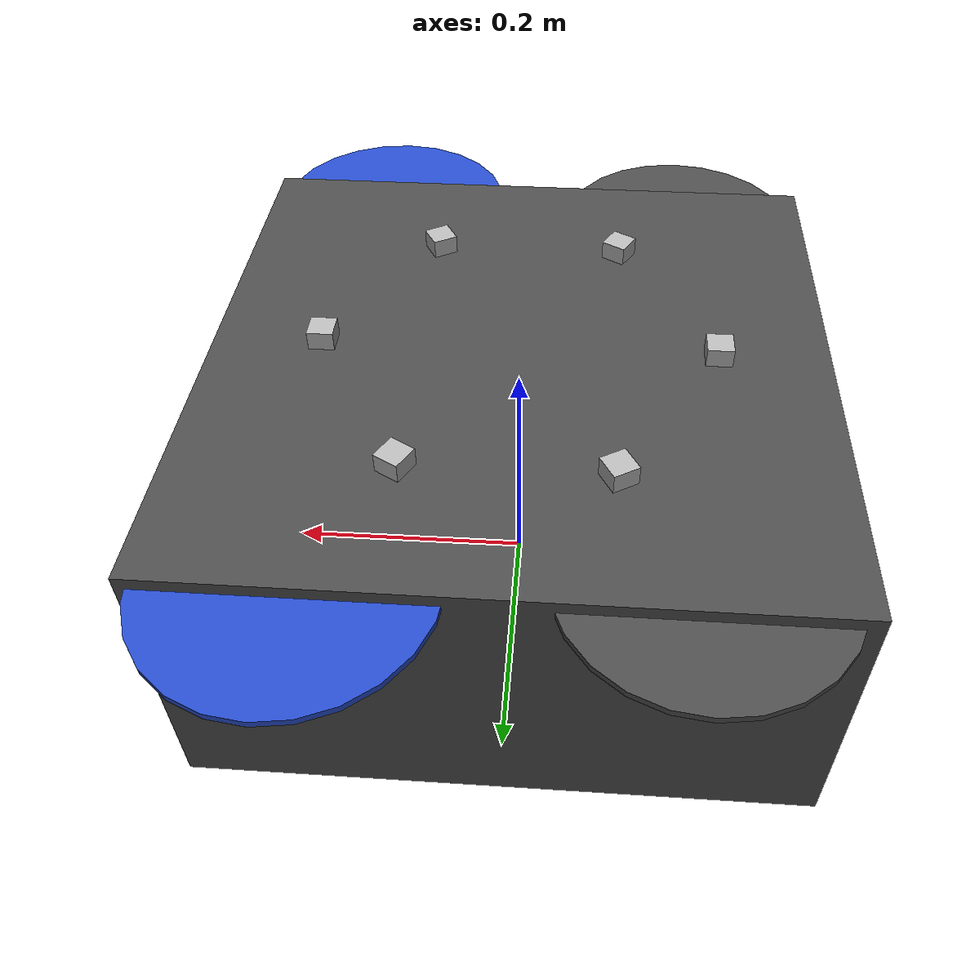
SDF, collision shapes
<?xml version="1.0"?>

<sdf version='1.5'>
  <model name='iris'>
    <pose>0 0 0.194923 0 0 0</pose>
    <link name='base_link'>
      <velocity_decay>
        <linear>0.0</linear>
        <angular>0.0</angular>
      </velocity_decay>
      <inertial>
        <pose>0 0 0 0 0 0</pose>
        <mass>1.5</mass>
        <inertia>
          <ixx>0.008</ixx>
          <ixy>0</ixy>
          <ixz>0</ixz>
          <iyy>0.015</iyy>
          <iyz>0</iyz>
          <izz>0.017</izz>
        </inertia>
      </inertial>
      <collision name='base_link_collision'>
        <pose>0 0 -0.08 0 0 0</pose>
        <geometry>
          <box>
            <size>0.47 0.47 0.23</size>
          </box>
        </geometry>
        <surface>
          <contact>
            <ode>
              <max_vel>100.0</max_vel>
              <min_depth>0.001</min_depth>
            </ode>
          </contact>
          <friction>
            <ode>
              <mu>100000.0</mu>
              <mu2>100000.0</mu2>
            </ode>
          </friction>
        </surface>
      </collision>
      <visual name='base_link_visual'>
        <geometry>
          <mesh>
            <uri>model://iris_with_standoffs/meshes/iris.dae</uri>
          </mesh>
        </geometry>
        <material>
          <script>
            <name>Gazebo/DarkGrey</name>
          </script>
        </material>
      </visual>

      <visual name='front_left_leg_visual'>
        <pose>0.123 0.22 -0.11 0 0 0</pose>
        <geometry>
          <cylinder>
            <radius>0.005</radius>
            <length>0.17</length>
          </cylinder>
        </geometry>
        <material>
          <script>
            <name>Gazebo/Green</name>
            <uri>file://media/materials/scripts/gazebo.material</uri>
          </script>
        </material>
      </visual>
      <visual name='front_right_leg_visual'>
        <pose>0.123 -0.22 -0.11 0 0 0</pose>
        <geometry>
          <cylinder>
            <radius>0.005</radius>
            <length>0.17</length>
          </cylinder>
        </geometry>
        <material>
          <script>
            <name>Gazebo/FlatBlack</name>
            <uri>file://media/materials/scripts/gazebo.material</uri>
          </script>
        </material>
      </visual>
      <visual name='rear_left_leg_visual'>
        <pose>-0.140 0.21 -0.11 0 0 0</pose>
        <geometry>
          <cylinder>
            <radius>0.005</radius>
            <length>0.17</length>
          </cylinder>
        </geometry>
        <material>
          <script>
            <name>Gazebo/FlatBlack</name>
            <uri>file://media/materials/scripts/gazebo.material</uri>
          </script>
        </material>
      </visual>
      <visual name='rear_right_leg_visual'>
        <pose>-0.140 -0.21 -0.11 0 0 0</pose>
        <geometry>
          <cylinder>
            <radius>0.005</radius>
            <length>0.17</length>
          </cylinder>
        </geometry>
        <material>
          <script>
            <name>Gazebo/FlatBlack</name>
            <uri>file://media/materials/scripts/gazebo.material</uri>
          </script>
        </material>
      </visual>
    </link>
    <link name='iris/ground_truth/odometry_sensorgt_link'>
      <pose>0 0 0 0 -0 0</pose>
      <inertial>
        <pose>0 0 0 0 -0 0</pose>
        <mass>0.15</mass>
        <inertia>
          <ixx>0.0001</ixx>
          <ixy>0</ixy>
          <ixz>0</ixz>
          <iyy>0.0002</iyy>
          <iyz>0</iyz>
          <izz>0.0002</izz>
        </inertia>
      </inertial>
    </link>
    <joint name='iris/ground_truth/odometry_sensorgt_joint' type='revolute'>
      <child>iris/ground_truth/odometry_sensorgt_link</child>
      <parent>base_link</parent>
      <axis>
        <xyz>0 0 1</xyz>
        <limit>
          <lower>0</lower>
          <upper>0</upper>
          <effort>0</effort>
          <velocity>0</velocity>
        </limit>
        <dynamics>
          <damping>1.0</damping>
        </dynamics>
        <use_parent_model_frame>1</use_parent_model_frame>
      </axis>
      <physics>
        <ode>
          <implicit_spring_damper>1</implicit_spring_damper>
        </ode>
      </physics>
    </joint>
    <link name='iris/imu_link'>
      <inertial>
        <pose>0 0 0 0 0 0</pose>
        <mass>0.15</mass>
        <inertia>
          <ixx>0.00001</ixx>
          <ixy>0</ixy>
          <ixz>0</ixz>
          <iyy>0.00002</iyy>
          <iyz>0</iyz>
          <izz>0.00002</izz>
        </inertia>
      </inertial>
      <sensor name="imu_sensor" type="imu">
        <pose>0 0 0 3.141593 0 0</pose>
        <always_on>1</always_on>
        <update_rate>1000.0</update_rate>
      </sensor>
    </link>
    <joint name='iris/imu_joint' type='revolute'>
      <child>iris/imu_link</child>
      <parent>base_link</parent>
      <axis>
        <xyz>0 0 1</xyz>
        <limit>
          <lower>0</lower>
          <upper>0</upper>
          <effort>0</effort>
          <velocity>0</velocity>
        </limit>
        <dynamics>
          <damping>1.0</damping>
        </dynamics>
        <use_parent_model_frame>1</use_parent_model_frame>
      </axis>
      <physics>
        <ode>
          <implicit_spring_damper>1</implicit_spring_damper>
        </ode>
      </physics>
    </joint>
    <link name='rotor_0'>
      <pose>0.13 -0.22 0.023 0 -0 0</pose>
      <inertial>
        <pose>0 0 0 0 -0 0</pose>
        <mass>0.025</mass>
        <inertia>
          <ixx>9.75e-06</ixx>
          <ixy>0</ixy>
          <ixz>0</ixz>
          <iyy>0.000166704</iyy>
          <iyz>0</iyz>
          <izz>0.000167604</izz>
        </inertia>
      </inertial>
      <collision name='rotor_0_collision'>
        <pose>0 0 0 0 -0 0</pose>
        <geometry>
          <cylinder>
            <length>0.005</length>
            <radius>0.1</radius>
          </cylinder>
        </geometry>
        <surface>
          <contact>
            <ode/>
          </contact>
          <friction>
            <ode/>
          </friction>
        </surface>
      </collision>
      <visual name='rotor_0_visual'>
        <pose>0 0 0 0 -0 0</pose>
        <geometry>
          <mesh>
            <scale>1 1 1</scale>
            <uri>model://iris_with_standoffs/meshes/iris_prop_ccw.dae</uri>
          </mesh>
        </geometry>
        <material>
          <script>
            <name>Gazebo/Blue</name>
            <uri>__default__</uri>
          </script>
        </material>
      </visual>
      <gravity>1</gravity>
      <velocity_decay/>
      <self_collide>0</self_collide>
    </link>
    <joint name='rotor_0_joint' type='revolute'>
      <child>rotor_0</child>
      <parent>base_link</parent>
      <axis>
        <xyz>0 0 1</xyz>
        <limit>
          <lower>-1e+16</lower>
          <upper>1e+16</upper>
        </limit>
        <dynamics>
          <damping>0.004</damping>
        </dynamics>
        <use_parent_model_frame>1</use_parent_model_frame>
      </axis>
      <physics>
        <ode>
          <implicit_spring_damper>1</implicit_spring_damper>
        </ode>
      </physics>
    </joint>
    <link name='rotor_1'>
      <pose>-0.13 0.2 0.023 0 -0 0</pose>
      <inertial>
        <pose>0 0 0 0 -0 0</pose>
        <mass>0.025</mass>
        <inertia>
          <ixx>9.75e-06</ixx>
          <ixy>0</ixy>
          <ixz>0</ixz>
          <iyy>0.000166704</iyy>
          <iyz>0</iyz>
          <izz>0.000167604</izz>
        </inertia>
      </inertial>
      <collision name='rotor_1_collision'>
        <pose>0 0 0 0 -0 0</pose>
        <geometry>
          <cylinder>
            <length>0.005</length>
            <radius>0.1</radius>
          </cylinder>
        </geometry>
        <surface>
          <contact>
            <ode/>
          </contact>
          <friction>
            <ode/>
          </friction>
        </surface>
      </collision>
      <visual name='rotor_1_visual'>
        <pose>0 0 0 0 -0 0</pose>
        <geometry>
          <mesh>
            <scale>1 1 1</scale>
            <uri>model://iris_with_standoffs/meshes/iris_prop_ccw.dae</uri>
          </mesh>
        </geometry>
        <material>
          <script>
            <name>Gazebo/DarkGrey</name>
            <uri>__default__</uri>
          </script>
        </material>
      </visual>
      <gravity>1</gravity>
      <velocity_decay/>
      <self_collide>0</self_collide>
    </link>
    <joint name='rotor_1_joint' type='revolute'>
      <child>rotor_1</child>
      <parent>base_link</parent>
      <axis>
        <xyz>0 0 1</xyz>
        <limit>
          <lower>-1e+16</lower>
          <upper>1e+16</upper>
        </limit>
        <dynamics>
          <damping>0.004</damping>
        </dynamics>
        <use_parent_model_frame>1</use_parent_model_frame>
      </axis>
      <physics>
        <ode>
          <implicit_spring_damper>1</implicit_spring_damper>
        </ode>
      </physics>
    </joint>
    <link name='rotor_2'>
      <pose>0.13 0.22 0.023 0 -0 0</pose>
      <inertial>
        <pose>0 0 0 0 -0 0</pose>
        <mass>0.025</mass>
        <inertia>
          <ixx>9.75e-06</ixx>
          <ixy>0</ixy>
          <ixz>0</ixz>
          <iyy>0.000166704</iyy>
          <iyz>0</iyz>
          <izz>0.000167604</izz>
        </inertia>
      </inertial>
      <collision name='rotor_2_collision'>
        <pose>0 0 0 0 -0 0</pose>
        <geometry>
          <cylinder>
            <length>0.005</length>
            <radius>0.1</radius>
          </cylinder>
        </geometry>
        <surface>
          <contact>
            <ode/>
          </contact>
          <friction>
            <ode/>
          </friction>
        </surface>
      </collision>
      <visual name='rotor_2_visual'>
        <pose>0 0 0 0 -0 0</pose>
        <geometry>
          <mesh>
            <scale>1 1 1</scale>
            <uri>model://iris_with_standoffs/meshes/iris_prop_cw.dae</uri>
          </mesh>
        </geometry>
        <material>
          <script>
            <name>Gazebo/Blue</name>
            <uri>__default__</uri>
          </script>
        </material>
      </visual>
      <gravity>1</gravity>
      <velocity_decay/>
      <self_collide>0</self_collide>
    </link>
    <joint name='rotor_2_joint' type='revolute'>
      <child>rotor_2</child>
      <parent>base_link</parent>
      <axis>
        <xyz>0 0 1</xyz>
        <limit>
          <lower>-1e+16</lower>
          <upper>1e+16</upper>
        </limit>
        <dynamics>
          <damping>0.004</damping>
        </dynamics>
        <use_parent_model_frame>1</use_parent_model_frame>
      </axis>
      <physics>
        <ode>
          <implicit_spring_damper>1</implicit_spring_damper>
        </ode>
      </physics>
    </joint>
    <link name='rotor_3'>
      <pose>-0.13 -0.2 0.023 0 -0 0</pose>
      <inertial>
        <pose>0 0 0 0 -0 0</pose>
        <mass>0.025</mass>
        <inertia>
          <ixx>9.75e-06</ixx>
          <ixy>0</ixy>
          <ixz>0</ixz>
          <iyy>0.000166704</iyy>
          <iyz>0</iyz>
          <izz>0.000167604</izz>
        </inertia>
      </inertial>
      <collision name='rotor_3_collision'>
        <pose>0 0 0 0 -0 0</pose>
        <geometry>
          <cylinder>
            <length>0.005</length>
            <radius>0.1</radius>
          </cylinder>
        </geometry>
        <surface>
          <contact>
            <ode/>
          </contact>
          <friction>
            <ode/>
          </friction>
        </surface>
      </collision>
      <visual name='rotor_3_visual'>
        <pose>0 0 0 0 -0 0</pose>
        <geometry>
          <mesh>
            <scale>1 1 1</scale>
            <uri>model://iris_with_standoffs/meshes/iris_prop_cw.dae</uri>
          </mesh>
        </geometry>
        <material>
          <script>
            <name>Gazebo/DarkGrey</name>
            <uri>__default__</uri>
          </script>
        </material>
      </visual>
      <gravity>1</gravity>
      <velocity_decay/>
      <self_collide>0</self_collide>
    </link>
    <joint name='rotor_3_joint' type='revolute'>
      <child>rotor_3</child>
      <parent>base_link</parent>
      <axis>
        <xyz>0 0 1</xyz>
        <limit>
          <lower>-1e+16</lower>
          <upper>1e+16</upper>
        </limit>
        <dynamics>
          <damping>0.004</damping>
        </dynamics>
        <use_parent_model_frame>1</use_parent_model_frame>
      </axis>
      <physics>
        <ode>
          <implicit_spring_damper>1</implicit_spring_damper>
        </ode>
      </physics>
    </joint>
    <static>0</static>

<!-- ===================== Add of the 2 cameras  =====================-->
  <link name='iris/camera1_link'>
    <pose>0 0 -.07 0 0 0</pose>
      <inertial>
        <pose>0 0 0 0 0 0</pose>
        <mass>0.001</mass>
        <inertia>
          <ixx>0.00001</ixx>
          <ixy>0</ixy>
          <ixz>0</ixz>
          <iyy>0.00002</iyy>
          <iyz>0</iyz>
          <izz>0.00002</izz>
        </inertia>
      </inertial>
    <collision name='camera1_link_collision'>
      <geometry>
        <box>
            <size>0.05 0.05 0.05</size>
        </box>
      </geometry>
    </collision>
    <visual name='camera1_link_visual'>
      <geometry>
        <box>
            <size>0.05 0.05 0.05</size>
        </box>
      </geometry>
    </visual>
    <material>
          <script>
            <uri>file://media/materials/scripts/gazebo.material</uri>
            <name>Gazebo/FlatBlack</name>
          </script>
    </material>
    <sensor name='camera1_sensor' type='camera'>
      <update_rate>30.0</update_rate>
      <camera name='head'>
        <horizontal_fov>1.0472</horizontal_fov>
        <image>
          <width>640</width>
          <height>480</height>
          <format>L8</format>
        </image>
        <clip>
          <near>0.02</near>
          <far>300</far>
        </clip>
      </camera>
      <plugin name='camera_controller' filename='libgazebo_ros_camera.so'>
        <robotNamespace>/</robotNamespace>
        <alwaysOn>true</alwaysOn>
        <updateRate>0.0</updateRate>
        <cameraName>iris/camera1</cameraName>
        <imageTopicName>image_raw</imageTopicName>
        <cameraInfoTopicName>camera_info</cameraInfoTopicName>
        <frameName>camera</frameName>
        <hackBaseline>0.07</hackBaseline>
        <distortionK1>0.0</distortionK1>
        <distortionK2>0.0</distortionK2>
        <distortionK3>0.0</distortionK3>
        <distortionT1>0.0</distortionT1>
        <distortionT2>0.0</distortionT2>
      </plugin>
    </sensor>
  </link>
  <joint name='iris/camera1_joint' type='fixed'>
    <child>iris/camera1_link</child>
    <parent>base_link</parent>
  </joint>

<link name='iris/camera2_link'>
    <pose>0 0 -.07 0 1.570796 0</pose>
      <inertial>
        <pose>0 0 0 0 0 0</pose>
        <mass>0.001</mass>
        <inertia>
          <ixx>0.00001</ixx>
          <ixy>0</ixy>
          <ixz>0</ixz>
          <iyy>0.00002</iyy>
          <iyz>0</iyz>
          <izz>0.00002</izz>
        </inertia>
      </inertial>
    <collision name='camera2_link_collision'>
      <geometry>
        <box>
            <size>0.05 0.05 0.05</size>
        </box>
      </geometry>
    </collision>
    <visual name='camera2_link_visual'>
      <geometry>
        <box>
            <size>0.05 0.05 0.05</size>
        </box>
      </geometry>
    </visual>
    <material>
          <script>
            <uri>file://media/materials/scripts/gazebo.material</uri>
            <name>Gazebo/FlatBlack</name>
          </script>
    </material>
    <sensor name='camera2_sensor' type='camera'>
      <update_rate>30.0</update_rate>
      <camera name='head'>
        <horizontal_fov>1.0472</horizontal_fov>
        <image>
          <width>640</width>
          <height>480</height>
          <format>L8</format>
        </image>
        <clip>
          <near>0.02</near>
          <far>300</far>
        </clip>
      </camera>
      <plugin name='camera_controller' filename='libgazebo_ros_camera.so'>
        <robotNamespace>/</robotNamespace>
        <alwaysOn>true</alwaysOn>
        <updateRate>0.0</updateRate>
        <cameraName>iris/camera2</cameraName>
        <imageTopicName>image_raw</imageTopicName>
        <cameraInfoTopicName>camera_info</cameraInfoTopicName>
        <frameName>camera</frameName>
        <hackBaseline>0.07</hackBaseline>
        <distortionK1>0.0</distortionK1>
        <distortionK2>0.0</distortionK2>
        <distortionK3>0.0</distortionK3>
        <distortionT1>0.0</distortionT1>
        <distortionT2>0.0</distortionT2>
      </plugin>
    </sensor>
  </link>
  <joint name='iris/camera2_joint' type='fixed'>
    <child>iris/camera2_link</child>
    <parent>base_link</parent>
  </joint>

  <link name='iris/light_sensor_link'>
    <pose>0 0 -.07 0 1.570796 0</pose>
      <inertial>
        <pose>0 0 0 0 0 0</pose>
        <mass>0.001</mass>
        <inertia>
          <ixx>0.00001</ixx>
          <ixy>0</ixy>
          <ixz>0</ixz>
          <iyy>0.00002</iyy>
          <iyz>0</iyz>
          <izz>0.00002</izz>
        </inertia>
      </inertial>
    <collision name='light_sensor_link_collision'>
      <geometry>
        <box>
            <size>0.05 0.05 0.05</size>
        </box>
      </geometry>
    </collision>
    <visual name='light_sensor_link_visual'>
      <geometry>
        <box>
            <size>0.05 0.05 0.05</size>
        </box>
      </geometry>
    </visual>
    <material>
          <script>
            <uri>file://media/materials/scripts/gazebo.material</uri>
            <name>Gazebo/FlatBlack</name>
          </script>
    </material>
    <sensor name='light_sensor' type='camera'>
          <camera name='light_sensor'>
            <horizontal_fov>1.047</horizontal_fov>
            <image>
              <width>3</width>
              <height>3</height>
            </image>
            <clip>
              <near>0.1</near>
              <far>100</far>
            </clip>
          </camera>
          <plugin name="gazebo_light_sensor_plugin" filename="libgazebo_light_sensor_plugin.so">
            <robotNamespace>/</robotNamespace>
            <cameraName>iris/light_sensor</cameraName>
            <alwaysOn>true</alwaysOn>
            <updateRate>10</updateRate>
            <imageTopicName>rgb/image_raw</imageTopicName>
            <depthImageTopicName>depth/image_raw</depthImageTopicName>
            <pointCloudTopicName>depth/points</pointCloudTopicName>
            <cameraInfoTopicName>rgb/camera_info</cameraInfoTopicName>
            <depthImageCameraInfoTopicName>depth/camera_info</depthImageCameraInfoTopicName>
            <frameName>camera_depth_optical_frame</frameName>
            <baseline>0.1</baseline>
            <distortion_k1>0.0</distortion_k1>
            <distortion_k2>0.0</distortion_k2>
            <distortion_k3>0.0</distortion_k3>
            <distortion_t1>0.0</distortion_t1>
            <distortion_t2>0.0</distortion_t2>
            <pointCloudCutoff>0.4</pointCloudCutoff>
          </plugin>
        </sensor>
  </link>
  <joint name='iris/light_sensor_joint' type='fixed'>
    <child>iris/light_sensor_link</child>
    <parent>base_link</parent>
  </joint>

  <!-- ===================== Add of the 6 short range infrared sensors ===================== -->
  <link name='iris/IRS1_link'>
      <pose>0.15 0 0 0 0 0</pose>
        <inertial>
          <pose>0 0 0 0 0 0</pose>
          <mass>0.001</mass>
          <inertia>
            <ixx>0.00001</ixx>
            <ixy>0</ixy>
            <ixz>0</ixz>
            <iyy>0.00002</iyy>
            <iyz>0</iyz>
            <izz>0.00002</izz>
          </inertia>
        </inertial>
      <collision name='IRS1_link_collision'>
        <geometry>
          <box>
              <size>.02 .04 .02</size>
          </box>
        </geometry>
      </collision>
      <visual name='IRS1_link_visual'>
        <geometry>
          <box>
              <size>.02 .04 .02</size>
          </box>
        </geometry>
      </visual>
      <material>
            <script>
              <uri>file://media/materials/scripts/gazebo.material</uri>
              <name>Gazebo/FlatBlack</name>
            </script>
      </material>
      <sensor name='IRS1_sensor' type='ray'>
      <update_rate>10</update_rate>
      <visualize>true</visualize>
      <ray>
        <scan>
          <horizontal>
            <samples>3</samples>
            <resolution>1</resolution>
            <min_angle>-5e-3</min_angle>
            <max_angle>5e-3</max_angle>
          </horizontal>
        </scan>
        <range>
          <min>0.25</min>
          <max>1.50</max>
          <resolution>0.01</resolution>
        </range>
        <noise>
          <type>gaussian</type>
          <mean>0.0</mean>
          <stddev>0.006666</stddev>
        </noise>
      </ray>
      <plugin name='gazebo_ros_head_hokuyo_controller' filename='libgazebo_ros_laser.so'>
        <robotNamespace>/</robotNamespace>
        <topicName>/iris/IRS/IRS1</topicName>
        <frameName>IRS1</frameName>
      </plugin>
    </sensor>
  </link>

  <joint name='iris/IRS1_joint' type='fixed'>
    <child>iris/IRS1_link</child>
    <parent>base_link</parent>
  </joint>

<link name='iris/IRS2_link'>
      <pose>0.075 0.129904 0 0 0 1.047197</pose>
        <inertial>
          <pose>0 0 0 0 0 0</pose>
          <mass>0.001</mass>
          <inertia>
            <ixx>0.00001</ixx>
            <ixy>0</ixy>
            <ixz>0</ixz>
            <iyy>0.00002</iyy>
            <iyz>0</iyz>
            <izz>0.00002</izz>
          </inertia>
        </inertial>
      <collision name='IRS2_link_collision'>
        <geometry>
          <box>
              <size>.02 .04 .02</size>
          </box>
        </geometry>
      </collision>
      <visual name='IRS2_link_visual'>
        <geometry>
          <box>
              <size>.02 .04 .02</size>
          </box>
        </geometry>
      </visual>
      <material>
            <script>
              <uri>file://media/materials/scripts/gazebo.material</uri>
              <name>Gazebo/FlatBlack</name>
            </script>
      </material>
      <sensor name='IRS2_sensor' type='ray'>
      <update_rate>10</update_rate>
      <visualize>true</visualize>
      <ray>
        <scan>
          <horizontal>
            <samples>3</samples>
            <resolution>1</resolution>
            <min_angle>-5e-3</min_angle>
            <max_angle>5e-3</max_angle>
          </horizontal>
        </scan>
        <range>
          <min>0.25</min>
          <max>1.50</max>
          <resolution>0.01</resolution>
        </range>
        <noise>
          <type>gaussian</type>
          <mean>0.0</mean>
          <stddev>0.006666</stddev>
        </noise>
      </ray>
      <plugin name='gazebo_ros_head_hokuyo_controller' filename='libgazebo_ros_laser.so'>
        <robotNamespace>/</robotNamespace>
        <topicName>/iris/IRS/IRS2</topicName>
        <frameName>IRS2</frameName>
      </plugin>
    </sensor>
  </link>

  <joint name='iris/IRS2_joint' type='fixed'>
    <child>iris/IRS2_link</child>
    <parent>base_link</parent>
  </joint>

<link name='iris/IRS3_link'>
      <pose>-0.075 0.129904 0 0 0 2.094395</pose>
        <inertial>
          <pose>0 0 0 0 0 0</pose>
          <mass>0.001</mass>
          <inertia>
            <ixx>0.00001</ixx>
            <ixy>0</ixy>
            <ixz>0</ixz>
            <iyy>0.00002</iyy>
            <iyz>0</iyz>
            <izz>0.00002</izz>
          </inertia>
        </inertial>
      <collision name='IRS3_link_collision'>
        <geometry>
          <box>
              <size>.02 .04 .02</size>
          </box>
        </geometry>
      </collision>
      <visual name='IRS3_link_visual'>
        <geometry>
          <box>
              <size>.02 .04 .02</size>
          </box>
        </geometry>
      </visual>
      <material>
            <script>
              <uri>file://media/materials/scripts/gazebo.material</uri>
              <name>Gazebo/FlatBlack</name>
            </script>
      </material>
      <sensor name='IRS3_sensor' type='ray'>
      <update_rate>10</update_rate>
      <visualize>true</visualize>
      <ray>
        <scan>
          <horizontal>
            <samples>3</samples>
            <resolution>1</resolution>
            <min_angle>-5e-3</min_angle>
            <max_angle>5e-3</max_angle>
          </horizontal>
        </scan>
        <range>
          <min>0.25</min>
          <max>1.50</max>
          <resolution>0.01</resolution>
        </range>
        <noise>
          <type>gaussian</type>
          <mean>0.0</mean>
          <stddev>0.006666</stddev>
        </noise>
      </ray>
      <plugin name='gazebo_ros_head_hokuyo_controller' filename='libgazebo_ros_laser.so'>
        <robotNamespace>/</robotNamespace>
        <topicName>/iris/IRS/IRS3</topicName>
        <frameName>IRS3</frameName>
      </plugin>
    </sensor>
  </link>

  <joint name='iris/IRS3_joint' type='fixed'>
    <child>iris/IRS3_link</child>
    <parent>base_link</parent>
  </joint>

<link name='iris/IRS4_link'>
      <pose>-0.15 0 0 0 0 3.141592654</pose>
        <inertial>
          <pose>0 0 0 0 0 0</pose>
          <mass>0.001</mass>
          <inertia>
            <ixx>0.00001</ixx>
            <ixy>0</ixy>
            <ixz>0</ixz>
            <iyy>0.00002</iyy>
            <iyz>0</iyz>
            <izz>0.00002</izz>
          </inertia>
        </inertial>
      <collision name='IRS4_link_collision'>
        <geometry>
          <box>
              <size>.02 .04 .02</size>
          </box>
        </geometry>
      </collision>
      <visual name='IRS4_link_visual'>
        <geometry>
          <box>
              <size>.02 .04 .02</size>
          </box>
        </geometry>
      </visual>
      <material>
            <script>
              <uri>file://media/materials/scripts/gazebo.material</uri>
              <name>Gazebo/FlatBlack</name>
            </script>
      </material>
      <sensor name='IRS4_sensor' type='ray'>
      <update_rate>10</update_rate>
      <visualize>true</visualize>
      <ray>
        <scan>
          <horizontal>
            <samples>3</samples>
            <resolution>1</resolution>
            <min_angle>-5e-3</min_angle>
            <max_angle>5e-3</max_angle>
          </horizontal>
        </scan>
        <range>
          <min>0.25</min>
          <max>1.50</max>
          <resolution>0.01</resolution>
        </range>
        <noise>
          <type>gaussian</type>
          <mean>0.0</mean>
          <stddev>0.006666</stddev>
        </noise>
      </ray>
      <plugin name='gazebo_ros_head_hokuyo_controller' filename='libgazebo_ros_laser.so'>
        <robotNamespace>/</robotNamespace>
        <topicName>/iris/IRS/IRS4</topicName>
        <frameName>IRS4</frameName>
      </plugin>
    </sensor>
  </link>

  <joint name='iris/IRS4_joint' type='fixed'>
    <child>iris/IRS4_link</child>
    <parent>base_link</parent>
  </joint>

<link name='iris/IRS5_link'>
      <pose>-0.075 -0.129904 0 0 0 4.188790</pose>
        <inertial>
          <pose>0 0 0 0 0 0</pose>
          <mass>0.001</mass>
          <inertia>
            <ixx>0.00001</ixx>
            <ixy>0</ixy>
            <ixz>0</ixz>
            <iyy>0.00002</iyy>
            <iyz>0</iyz>
            <izz>0.00002</izz>
          </inertia>
        </inertial>
      <collision name='IRS5_link_collision'>
        <geometry>
          <box>
              <size>.02 .04 .02</size>
          </box>
        </geometry>
      </collision>
      <visual name='IRS5_link_visual'>
        <geometry>
          <box>
              <size>.02 .04 .02</size>
          </box>
        </geometry>
      </visual>
      <material>
            <script>
              <uri>file://media/materials/scripts/gazebo.material</uri>
              <name>Gazebo/FlatBlack</name>
            </script>
      </material>
      <sensor name='IRS5_sensor' type='ray'>
      <update_rate>10</update_rate>
      <visualize>true</visualize>
      <ray>
        <scan>
          <horizontal>
            <samples>3</samples>
            <resolution>1</resolution>
            <min_angle>-5e-3</min_angle>
            <max_angle>5e-3</max_angle>
          </horizontal>
        </scan>
        <range>
          <min>0.25</min>
          <max>1.50</max>
          <resolution>0.01</resolution>
        </range>
        <noise>
          <type>gaussian</type>
          <mean>0.0</mean>
          <stddev>0.006666</stddev>
        </noise>
      </ray>
      <plugin name='gazebo_ros_head_hokuyo_controller' filename='libgazebo_ros_laser.so'>
        <robotNamespace>/</robotNamespace>
        <topicName>/iris/IRS/IRS5</topicName>
        <frameName>IRS5</frameName>
      </plugin>
    </sensor>
  </link>

  <joint name='iris/IRS5_joint' type='fixed'>
    <child>iris/IRS5_link</child>
    <parent>base_link</parent>
  </joint>

<link name='iris/IRS6_link'>
      <pose>0.075 -0.129904 0 0 0 -1.047197</pose>
        <inertial>
          <pose>0 0 0 0 0 0</pose>
          <mass>0.001</mass>
          <inertia>
            <ixx>0.00001</ixx>
            <ixy>0</ixy>
            <ixz>0</ixz>
            <iyy>0.00002</iyy>
            <iyz>0</iyz>
            <izz>0.00002</izz>
          </inertia>
        </inertial>
      <collision name='IRS6_link_collision'>
        <geometry>
          <box>
              <size>.02 .04 .02</size>
          </box>
        </geometry>
      </collision>
      <visual name='IRS6_link_visual'>
        <geometry>
          <box>
              <size>.02 .04 .02</size>
          </box>
        </geometry>
      </visual>
      <material>
            <script>
              <uri>file://media/materials/scripts/gazebo.material</uri>
              <name>Gazebo/FlatBlack</name>
            </script>
      </material>
      <sensor name='IRS6_sensor' type='ray'>
      <update_rate>10</update_rate>
      <visualize>true</visualize>
      <ray>
        <scan>
          <horizontal>
            <samples>3</samples>
            <resolution>1</resolution>
            <min_angle>-5e-3</min_angle>
            <max_angle>5e-3</max_angle>
          </horizontal>
        </scan>
        <range>
          <min>0.25</min>
          <max>1.50</max>
          <resolution>0.01</resolution>
        </range>
        <noise>
          <type>gaussian</type>
          <mean>0.0</mean>
          <stddev>0.006666</stddev>
        </noise>
      </ray>
      <plugin name='gazebo_ros_head_hokuyo_controller' filename='libgazebo_ros_laser.so'>
        <robotNamespace>/</robotNamespace>
        <topicName>/iris/IRS/IRS6</topicName>
        <frameName>IRS6</frameName>
      </plugin>
    </sensor>
  </link>

  <joint name='iris/IRS6_joint' type='fixed'>
    <child>iris/IRS6_link</child>
    <parent>base_link</parent>
  </joint>

<!-- ===================== Add of the 6 long range infrared sensors ===================== -->
  <link name='iris/IRL1_link'>
      <pose>0.15 0 0.02 0 0 0</pose>
        <inertial>
          <pose>0 0 0 0 0 0</pose>
          <mass>0.001</mass>
          <inertia>
            <ixx>0.00001</ixx>
            <ixy>0</ixy>
            <ixz>0</ixz>
            <iyy>0.00002</iyy>
            <iyz>0</iyz>
            <izz>0.00002</izz>
          </inertia>
        </inertial>
      <collision name='IRL1_link_collision'>
        <geometry>
          <box>
              <size>.02 .04 .02</size>
          </box>
        </geometry>
      </collision>
      <visual name='IRL1_link_visual'>
        <geometry>
          <box>
              <size>.02 .04 .02</size>
          </box>
        </geometry>
      </visual>
      <material>
            <script>
              <uri>file://media/materials/scripts/gazebo.material</uri>
              <name>Gazebo/FlatBlack</name>
            </script>
      </material>
      <sensor name='IRL1_sensor' type='ray'>
      <update_rate>10</update_rate>
      <visualize>true</visualize>
      <ray>
        <scan>
          <horizontal>
            <samples>3</samples>
            <resolution>1</resolution>
            <min_angle>-5e-3</min_angle>
            <max_angle>5e-3</max_angle>
          </horizontal>
        </scan>
        <range>
          <min>1.00</min>
          <max>5.50</max>
          <resolution>0.01</resolution>
        </range>
        <noise>
          <type>gaussian</type>
          <mean>0.0</mean>
          <stddev>0.006666</stddev>
        </noise>
      </ray>
      <plugin name='gazebo_ros_head_hokuyo_controller' filename='libgazebo_ros_laser.so'>
        <robotNamespace>/</robotNamespace>
        <topicName>/iris/IRL/IRL1</topicName>
        <frameName>IRL1</frameName>
      </plugin>
    </sensor>
  </link>

  <joint name='iris/IRL1_joint' type='fixed'>
    <child>iris/IRL1_link</child>
    <parent>base_link</parent>
  </joint>

<link name='iris/IRL2_link'>
      <pose>0.075 0.129904 0.02 0 0 1.047197</pose>
        <inertial>
          <pose>0 0 0 0 0 0</pose>
          <mass>0.001</mass>
          <inertia>
            <ixx>0.00001</ixx>
            <ixy>0</ixy>
            <ixz>0</ixz>
            <iyy>0.00002</iyy>
            <iyz>0</iyz>
            <izz>0.00002</izz>
          </inertia>
        </inertial>
      <collision name='IRL2_link_collision'>
        <geometry>
          <box>
              <size>.02 .04 .02</size>
          </box>
        </geometry>
      </collision>
      <visual name='IRL2_link_visual'>
        <geometry>
          <box>
              <size>.02 .04 .02</size>
          </box>
        </geometry>
      </visual>
      <material>
            <script>
              <uri>file://media/materials/scripts/gazebo.material</uri>
              <name>Gazebo/FlatBlack</name>
            </script>
      </material>
      <sensor name='IRL2_sensor' type='ray'>
      <update_rate>10</update_rate>
      <visualize>true</visualize>
      <ray>
        <scan>
          <horizontal>
            <samples>3</samples>
            <resolution>1</resolution>
            <min_angle>-5e-3</min_angle>
            <max_angle>5e-3</max_angle>
          </horizontal>
        </scan>
        <range>
          <min>1.00</min>
          <max>5.50</max>
          <resolution>0.01</resolution>
        </range>
        <noise>
          <type>gaussian</type>
          <mean>0.0</mean>
          <stddev>0.006666</stddev>
        </noise>
      </ray>
      <plugin name='gazebo_ros_head_hokuyo_controller' filename='libgazebo_ros_laser.so'>
        <robotNamespace>/</robotNamespace>
        <topicName>/iris/IRL/IRL2</topicName>
        <frameName>IRL2</frameName>
      </plugin>
    </sensor>
  </link>

  <joint name='iris/IRL2_joint' type='fixed'>
    <child>iris/IRL2_link</child>
    <parent>base_link</parent>
  </joint>

<link name='iris/IRL3_link'>
      <pose>-0.075 0.129904 0.02 0 0 2.094395</pose>
        <inertial>
          <pose>0 0 0 0 0 0</pose>
          <mass>0.001</mass>
          <inertia>
            <ixx>0.00001</ixx>
            <ixy>0</ixy>
            <ixz>0</ixz>
            <iyy>0.00002</iyy>
            <iyz>0</iyz>
            <izz>0.00002</izz>
          </inertia>
        </inertial>
      <collision name='IRL3_link_collision'>
        <geometry>
          <box>
              <size>.02 .04 .02</size>
          </box>
        </geometry>
      </collision>
      <visual name='IRL3_link_visual'>
        <geometry>
          <box>
              <size>.02 .04 .02</size>
          </box>
        </geometry>
      </visual>
      <material>
            <script>
              <uri>file://media/materials/scripts/gazebo.material</uri>
              <name>Gazebo/FlatBlack</name>
            </script>
      </material>
      <sensor name='IRL3_sensor' type='ray'>
      <update_rate>10</update_rate>
      <visualize>true</visualize>
      <ray>
        <scan>
          <horizontal>
            <samples>3</samples>
            <resolution>1</resolution>
            <min_angle>-5e-3</min_angle>
            <max_angle>5e-3</max_angle>
          </horizontal>
        </scan>
        <range>
          <min>1.00</min>
          <max>5.50</max>
          <resolution>0.01</resolution>
        </range>
        <noise>
          <type>gaussian</type>
          <mean>0.0</mean>
          <stddev>0.006666</stddev>
        </noise>
      </ray>
      <plugin name='gazebo_ros_head_hokuyo_controller' filename='libgazebo_ros_laser.so'>
        <robotNamespace>/</robotNamespace>
        <topicName>/iris/IRL/IRL3</topicName>
        <frameName>IRL3</frameName>
      </plugin>
    </sensor>
  </link>

  <joint name='iris/IRL3_joint' type='fixed'>
    <child>iris/IRL3_link</child>
    <parent>base_link</parent>
  </joint>

<link name='iris/IRL4_link'>
      <pose>-0.15 0 0.02 0 0 3.141592654</pose>
        <inertial>
          <pose>0 0 0 0 0 0</pose>
          <mass>0.001</mass>
          <inertia>
            <ixx>0.00001</ixx>
            <ixy>0</ixy>
            <ixz>0</ixz>
            <iyy>0.00002</iyy>
            <iyz>0</iyz>
            <izz>0.00002</izz>
          </inertia>
        </inertial>
      <collision name='IRL4_link_collision'>
        <geometry>
          <box>
              <size>.02 .04 .02</size>
          </box>
        </geometry>
      </collision>
      <visual name='IRL4_link_visual'>
        <geometry>
          <box>
              <size>.02 .04 .02</size>
          </box>
        </geometry>
      </visual>
      <material>
            <script>
              <uri>file://media/materials/scripts/gazebo.material</uri>
              <name>Gazebo/FlatBlack</name>
            </script>
      </material>
      <sensor name='IRL4_sensor' type='ray'>
      <update_rate>10</update_rate>
      <visualize>true</visualize>
      <ray>
        <scan>
          <horizontal>
            <samples>3</samples>
            <resolution>1</resolution>
            <min_angle>-5e-3</min_angle>
            <max_angle>5e-3</max_angle>
          </horizontal>
        </scan>
        <range>
          <min>1.00</min>
          <max>5.50</max>
          <resolution>0.01</resolution>
        </range>
        <noise>
          <type>gaussian</type>
          <mean>0.0</mean>
          <stddev>0.006666</stddev>
        </noise>
      </ray>
      <plugin name='gazebo_ros_head_hokuyo_controller' filename='libgazebo_ros_laser.so'>
        <robotNamespace>/</robotNamespace>
        <topicName>/iris/IRL/IRL4</topicName>
        <frameName>IRL4</frameName>
      </plugin>
    </sensor>
  </link>

  <joint name='iris/IRL4_joint' type='fixed'>
    <child>iris/IRL4_link</child>
    <parent>base_link</parent>
  </joint>

  <link name='iris/IRL5_link'>
      <pose>-0.075 -0.129904 0.02 0 0 4.188790</pose>
        <inertial>
          <pose>0 0 0 0 0 0</pose>
          <mass>0.001</mass>
          <inertia>
            <ixx>0.00001</ixx>
            <ixy>0</ixy>
            <ixz>0</ixz>
            <iyy>0.00002</iyy>
            <iyz>0</iyz>
            <izz>0.00002</izz>
          </inertia>
        </inertial>
      <collision name='IRL5_link_collision'>
        <geometry>
          <box>
              <size>.02 .04 .02</size>
          </box>
        </geometry>
      </collision>
      <visual name='IRL5_link_visual'>
        <geometry>
          <box>
              <size>.02 .04 .02</size>
          </box>
        </geometry>
      </visual>
      <material>
            <script>
              <uri>file://media/materials/scripts/gazebo.material</uri>
              <name>Gazebo/FlatBlack</name>
            </script>
      </material>
      <sensor name='IRL5_sensor' type='ray'>
      <update_rate>10</update_rate>
      <visualize>true</visualize>
      <ray>
        <scan>
          <horizontal>
            <samples>3</samples>
            <resolution>1</resolution>
            <min_angle>-5e-3</min_angle>
            <max_angle>5e-3</max_angle>
          </horizontal>
        </scan>
        <range>
          <min>1.00</min>
          <max>5.50</max>
          <resolution>0.01</resolution>
        </range>
        <noise>
          <type>gaussian</type>
          <mean>0.0</mean>
          <stddev>0.006666</stddev>
        </noise>
      </ray>
      <plugin name='gazebo_ros_head_hokuyo_controller' filename='libgazebo_ros_laser.so'>
        <robotNamespace>/</robotNamespace>
        <topicName>/iris/IRL/IRL5</topicName>
        <frameName>IRL5</frameName>
      </plugin>
    </sensor>
  </link>

  <joint name='iris/IRL5_joint' type='fixed'>
    <child>iris/IRL5_link</child>
    <parent>base_link</parent>
  </joint>

  <link name='iris/IRL6_link'>
      <pose>0.075 -0.129904 0.02 0 0 -1.047197</pose>
        <inertial>
          <pose>0 0 0 0 0 0</pose>
          <mass>0.001</mass>
          <inertia>
            <ixx>0.00001</ixx>
            <ixy>0</ixy>
            <ixz>0</ixz>
            <iyy>0.00002</iyy>
            <iyz>0</iyz>
            <izz>0.00002</izz>
          </inertia>
        </inertial>
      <collision name='IRL6_link_collision'>
        <geometry>
          <box>
              <size>.02 .04 .02</size>
          </box>
        </geometry>
      </collision>
      <visual name='IRL6_link_visual'>
        <geometry>
          <box>
              <size>.02 .04 .02</size>
          </box>
        </geometry>
      </visual>
      <material>
            <script>
              <uri>file://media/materials/scripts/gazebo.material</uri>
              <name>Gazebo/FlatBlack</name>
            </script>
      </material>
      <sensor name='IRL6_sensor' type='ray'>
      <update_rate>10</update_rate>
      <visualize>true</visualize>
      <ray>
        <scan>
          <horizontal>
            <samples>3</samples>
            <resolution>1</resolution>
            <min_angle>-5e-3</min_angle>
            <max_angle>5e-3</max_angle>
          </horizontal>
        </scan>
        <range>
          <min>1.00</min>
          <max>5.50</max>
          <resolution>0.01</resolution>
        </range>
        <noise>
          <type>gaussian</type>
          <mean>0.0</mean>
          <stddev>0.006666</stddev>
        </noise>
      </ray>
      <plugin name='gazebo_ros_head_hokuyo_controller' filename='libgazebo_ros_laser.so'>
        <robotNamespace>/</robotNamespace>
        <topicName>/iris/IRL/IRL6</topicName>
        <frameName>IRL6</frameName>
      </plugin>
    </sensor>
  </link>

  <joint name='iris/IRL6_joint' type='fixed'>
    <child>iris/IRL6_link</child>
    <parent>base_link</parent>
  </joint>

<!-- ============================ Add of the 6 ultrasound sensors ======================= -->
  <link name='iris/US1_link'>
      <pose>0.15 0 0.04 0 0 0</pose>
        <inertial>
          <pose>0 0 0 0 0 0</pose>
          <mass>0.001</mass>
          <inertia>
            <ixx>0.00001</ixx>
            <ixy>0</ixy>
            <ixz>0</ixz>
            <iyy>0.00002</iyy>
            <iyz>0</iyz>
            <izz>0.00002</izz>
          </inertia>
        </inertial>
      <collision name='US1_link_collision'>
        <geometry>
          <box>
              <size>.02 .02 .02</size>
          </box>
        </geometry>
      </collision>
      <visual name='US1_link_visual'>
        <geometry>
          <box>
              <size>.02 .02 .02</size>
          </box>
        </geometry>
      </visual>
      <material>
            <script>
              <uri>file://media/materials/scripts/gazebo.material</uri>
              <name>Gazebo/FlatBlack</name>
            </script>
      </material>
      <sensor name='US1_sensor' type='ray'>
      <update_rate>10</update_rate>
      <visualize>true</visualize>
      <ray>
        <scan>
          <horizontal>
            <samples>61</samples>
            <resolution>1</resolution>
            <min_angle>-0.523599</min_angle>
            <max_angle>0.523599</max_angle>
          </horizontal>
        </scan>
        <range>
          <min>0.25</min>
          <max>6.0</max>
          <resolution>0.01</resolution>
        </range>
        <noise>
          <type>gaussian</type>
          <mean>0.0</mean>
          <stddev>0.006666</stddev>
        </noise>
      </ray>
      <plugin name='gazebo_ros_head_hokuyo_controller' filename='libgazebo_ros_laser.so'>
        <robotNamespace>/</robotNamespace>
        <topicName>/iris/US/US1</topicName>
        <frameName>US1</frameName>
      </plugin>
    </sensor>
  </link>

  <joint name='iris/US1_joint' type='fixed'>
    <child>iris/US1_link</child>
    <parent>base_link</parent>
  </joint>

  <link name='iris/US2_link'>
      <pose>0.075 0.129904 0.04 0 0 1.047197</pose>
        <inertial>
          <pose>0 0 0 0 0 0</pose>
          <mass>0.001</mass>
          <inertia>
            <ixx>0.00001</ixx>
            <ixy>0</ixy>
            <ixz>0</ixz>
            <iyy>0.00002</iyy>
            <iyz>0</iyz>
            <izz>0.00002</izz>
          </inertia>
        </inertial>
      <collision name='US2_link_collision'>
        <geometry>
          <box>
              <size>.02 .02 .02</size>
          </box>
        </geometry>
      </collision>
      <visual name='US2_link_visual'>
        <geometry>
          <box>
              <size>.02 .02 .02</size>
          </box>
        </geometry>
      </visual>
      <material>
            <script>
              <uri>file://media/materials/scripts/gazebo.material</uri>
              <name>Gazebo/FlatBlack</name>
            </script>
      </material>
      <sensor name='US2_sensor' type='ray'>
      <update_rate>10</update_rate>
      <visualize>true</visualize>
      <ray>
        <scan>
          <horizontal>
            <samples>61</samples>
            <resolution>1</resolution>
            <min_angle>-0.523599</min_angle>
            <max_angle>0.523599</max_angle>
          </horizontal>
        </scan>
        <range>
          <min>0.25</min>
          <max>6.0</max>
          <resolution>0.01</resolution>
        </range>
        <noise>
          <type>gaussian</type>
          <mean>0.0</mean>
          <stddev>0.006666</stddev>
        </noise>
      </ray>
      <plugin name='gazebo_ros_head_hokuyo_controller' filename='libgazebo_ros_laser.so'>
        <robotNamespace>/</robotNamespace>
        <topicName>/iris/US/US2</topicName>
        <frameName>US2</frameName>
      </plugin>
    </sensor>
  </link>

  <joint name='iris/US2_joint' type='fixed'>
    <child>iris/US2_link</child>
    <parent>base_link</parent>
  </joint>

<link name='iris/US3_link'>
      <pose>-0.075 0.129904 0.04 0 0 2.094395</pose>
        <inertial>
          <pose>0 0 0 0 0 0</pose>
          <mass>0.001</mass>
          <inertia>
            <ixx>0.00001</ixx>
            <ixy>0</ixy>
            <ixz>0</ixz>
            <iyy>0.00002</iyy>
            <iyz>0</iyz>
            <izz>0.00002</izz>
          </inertia>
        </inertial>
      <collision name='US3_link_collision'>
        <geometry>
          <box>
              <size>.02 .02 .02</size>
          </box>
        </geometry>
      </collision>
      <visual name='US3_link_visual'>
        <geometry>
          <box>
              <size>.02 .02 .02</size>
          </box>
        </geometry>
      </visual>
      <material>
            <script>
              <uri>file://media/materials/scripts/gazebo.material</uri>
              <name>Gazebo/FlatBlack</name>
            </script>
      </material>
      <sensor name='US3_sensor' type='ray'>
      <update_rate>10</update_rate>
      <visualize>true</visualize>
      <ray>
        <scan>
          <horizontal>
            <samples>61</samples>
            <resolution>1</resolution>
            <min_angle>-0.523599</min_angle>
            <max_angle>0.523599</max_angle>
          </horizontal>
        </scan>
        <range>
          <min>0.25</min>
          <max>6.0</max>
          <resolution>0.01</resolution>
        </range>
        <noise>
          <type>gaussian</type>
          <mean>0.0</mean>
          <stddev>0.006666</stddev>
        </noise>
      </ray>
      <plugin name='gazebo_ros_head_hokuyo_controller' filename='libgazebo_ros_laser.so'>
        <robotNamespace>/</robotNamespace>
        <topicName>/iris/US/US3</topicName>
        <frameName>US3</frameName>
      </plugin>
    </sensor>
  </link>

  <joint name='iris/US3_joint' type='fixed'>
    <child>iris/US3_link</child>
    <parent>base_link</parent>
  </joint>

<link name='iris/US4_link'>
      <pose>-0.15 0 0.04 0 0 3.141592654</pose>
        <inertial>
          <pose>0 0 0 0 0 0</pose>
          <mass>0.001</mass>
          <inertia>
            <ixx>0.00001</ixx>
            <ixy>0</ixy>
            <ixz>0</ixz>
            <iyy>0.00002</iyy>
            <iyz>0</iyz>
            <izz>0.00002</izz>
          </inertia>
        </inertial>
      <collision name='US4_link_collision'>
        <geometry>
          <box>
              <size>.02 .02 .02</size>
          </box>
        </geometry>
      </collision>
      <visual name='US4_link_visual'>
        <geometry>
          <box>
              <size>.02 .02 .02</size>
          </box>
        </geometry>
      </visual>
      <material>
            <script>
              <uri>file://media/materials/scripts/gazebo.material</uri>
              <name>Gazebo/FlatBlack</name>
            </script>
      </material>
      <sensor name='US4_sensor' type='ray'>
      <update_rate>10</update_rate>
      <visualize>true</visualize>
      <ray>
        <scan>
          <horizontal>
            <samples>61</samples>
            <resolution>1</resolution>
            <min_angle>-0.523599</min_angle>
            <max_angle>0.523599</max_angle>
          </horizontal>
        </scan>
        <range>
          <min>0.25</min>
          <max>6.0</max>
          <resolution>0.01</resolution>
        </range>
        <noise>
          <type>gaussian</type>
          <mean>0.0</mean>
          <stddev>0.006666</stddev>
        </noise>
      </ray>
      <plugin name='gazebo_ros_head_hokuyo_controller' filename='libgazebo_ros_laser.so'>
        <robotNamespace>/</robotNamespace>
        <topicName>/iris/US/US4</topicName>
        <frameName>US4</frameName>
      </plugin>
    </sensor>
  </link>

  <joint name='iris/US4_joint' type='fixed'>
    <child>iris/US4_link</child>
    <parent>base_link</parent>
  </joint>

<link name='iris/US5_link'>
      <pose>-0.075 -0.129904 0.04 0 0 4.188790</pose>
        <inertial>
          <pose>0 0 0 0 0 0</pose>
          <mass>0.001</mass>
          <inertia>
            <ixx>0.00001</ixx>
            <ixy>0</ixy>
            <ixz>0</ixz>
            <iyy>0.00002</iyy>
            <iyz>0</iyz>
            <izz>0.00002</izz>
          </inertia>
        </inertial>
      <collision name='US5_link_collision'>
        <geometry>
          <box>
              <size>.02 .02 .02</size>
          </box>
        </geometry>
      </collision>
      <visual name='US5_link_visual'>
        <geometry>
          <box>
              <size>.02 .02 .02</size>
          </box>
        </geometry>
      </visual>
      <material>
            <script>
              <uri>file://media/materials/scripts/gazebo.material</uri>
              <name>Gazebo/FlatBlack</name>
            </script>
      </material>
      <sensor name='US5_sensor' type='ray'>
      <update_rate>10</update_rate>
      <visualize>true</visualize>
      <ray>
        <scan>
          <horizontal>
            <samples>61</samples>
            <resolution>1</resolution>
            <min_angle>-0.523599</min_angle>
            <max_angle>0.523599</max_angle>
          </horizontal>
        </scan>
        <range>
          <min>0.25</min>
          <max>6.0</max>
          <resolution>0.01</resolution>
        </range>
        <noise>
          <type>gaussian</type>
          <mean>0.0</mean>
          <stddev>0.006666</stddev>
        </noise>
      </ray>
      <plugin name='gazebo_ros_head_hokuyo_controller' filename='libgazebo_ros_laser.so'>
        <robotNamespace>/</robotNamespace>
        <topicName>/iris/US/US5</topicName>
        <frameName>US5</frameName>
      </plugin>
    </sensor>
  </link>

  <joint name='iris/US5_joint' type='fixed'>
    <child>iris/US5_link</child>
    <parent>base_link</parent>
  </joint>

  <link name='iris/US6_link'>
      <pose>0.075 -0.129904 0.04 0 0 -1.047197</pose>
        <inertial>
          <pose>0 0 0 0 0 0</pose>
          <mass>0.001</mass>
          <inertia>
            <ixx>0.00001</ixx>
            <ixy>0</ixy>
            <ixz>0</ixz>
            <iyy>0.00002</iyy>
            <iyz>0</iyz>
            <izz>0.00002</izz>
          </inertia>
        </inertial>
      <collision name='US6_link_collision'>
        <geometry>
          <box>
              <size>.02 .02 .02</size>
          </box>
        </geometry>
      </collision>
      <visual name='US6_link_visual'>
        <geometry>
          <box>
              <size>.02 .02 .02</size>
          </box>
        </geometry>
      </visual>
      <material>
            <script>
              <uri>file://media/materials/scripts/gazebo.material</uri>
              <name>Gazebo/FlatBlack</name>
            </script>
      </material>
      <sensor name='US6_sensor' type='ray'>
      <update_rate>10</update_rate>
      <visualize>true</visualize>
      <ray>
        <scan>
          <horizontal>
            <samples>61</samples>
            <resolution>1</resolution>
            <min_angle>-0.523599</min_angle>
            <max_angle>0.523599</max_angle>
          </horizontal>
        </scan>
        <range>
          <min>0.25</min>
          <max>6.0</max>
          <resolution>0.01</resolution>
        </range>
        <noise>
          <type>gaussian</type>
          <mean>0.0</mean>
          <stddev>0.006666</stddev>
        </noise>
      </ray>
      <plugin name='gazebo_ros_head_hokuyo_controller' filename='libgazebo_ros_laser.so'>
        <robotNamespace>/</robotNamespace>
        <topicName>/iris/US/US6</topicName>
        <frameName>US6</frameName>
      </plugin>
    </sensor>
  </link>

  <joint name='iris/US6_joint' type='fixed'>
    <child>iris/US6_link</child>
    <parent>base_link</parent>
  </joint>

<!-- ======================================================================
     END OF Adding of HPeC sensors
======================================================================= -->

    <!-- plugins -->
    <plugin name="rotor_0_blade_1" filename="libLiftDragPlugin.so">
      <a0>0.3</a0>
      <alpha_stall>1.4</alpha_stall>
      <cla>4.2500</cla>
      <cda>0.10</cda>
      <cma>0.00</cma>
      <cla_stall>-0.025</cla_stall>
      <cda_stall>0.0</cda_stall>
      <cma_stall>0.0</cma_stall>
      <area>0.002</area>
      <air_density>1.2041</air_density>
      <cp>0.084 0 0</cp>
      <forward>0 1 0</forward>
      <upward>0 0 1</upward>
      <link_name>iris::rotor_0</link_name>
    </plugin>
    <plugin name="rotor_0_blade_2" filename="libLiftDragPlugin.so">
      <a0>0.3</a0>
      <alpha_stall>1.4</alpha_stall>
      <cla>4.2500</cla>
      <cda>0.10</cda>
      <cma>0.00</cma>
      <cla_stall>-0.025</cla_stall>
      <cda_stall>0.0</cda_stall>
      <cma_stall>0.0</cma_stall>
      <area>0.002</area>
      <air_density>1.2041</air_density>
      <cp>-0.084 0 0</cp>
      <forward>0 -1 0</forward>
      <upward>0 0 1</upward>
      <link_name>iris::rotor_0</link_name>
    </plugin>

    <plugin name="rotor_1_blade_1" filename="libLiftDragPlugin.so">
      <a0>0.3</a0>
      <alpha_stall>1.4</alpha_stall>
      <cla>4.2500</cla>
      <cda>0.10</cda>
      <cma>0.00</cma>
      <cla_stall>-0.025</cla_stall>
      <cda_stall>0.0</cda_stall>
      <cma_stall>0.0</cma_stall>
      <area>0.002</area>
      <air_density>1.2041</air_density>
      <cp>0.084 0 0</cp>
      <forward>0 1 0</forward>
      <upward>0 0 1</upward>
      <link_name>iris::rotor_1</link_name>
    </plugin>
    <plugin name="rotor_1_blade_2" filename="libLiftDragPlugin.so">
      <a0>0.3</a0>
      <alpha_stall>1.4</alpha_stall>
      <cla>4.2500</cla>
      <cda>0.10</cda>
      <cma>0.00</cma>
      <cla_stall>-0.025</cla_stall>
      <cda_stall>0.0</cda_stall>
      <cma_stall>0.0</cma_stall>
      <area>0.002</area>
      <air_density>1.2041</air_density>
      <cp>-0.084 0 0</cp>
      <forward>0 -1 0</forward>
      <upward>0 0 1</upward>
      <link_name>iris::rotor_1</link_name>
    </plugin>

    <plugin name="rotor_2_blade_1" filename="libLiftDragPlugin.so">
      <a0>0.3</a0>
      <alpha_stall>1.4</alpha_stall>
      <cla>4.2500</cla>
      <cda>0.10</cda>
      <cma>0.00</cma>
      <cla_stall>-0.025</cla_stall>
      <cda_stall>0.0</cda_stall>
      <cma_stall>0.0</cma_stall>
      <area>0.002</area>
      <air_density>1.2041</air_density>
      <cp>0.084 0 0</cp>
      <forward>0 -1 0</forward>
      <upward>0 0 1</upward>
      <link_name>iris::rotor_2</link_name>
    </plugin>
    <plugin name="rotor_2_blade_2" filename="libLiftDragPlugin.so">
      <a0>0.3</a0>
      <alpha_stall>1.4</alpha_stall>
      <cla>4.2500</cla>
      <cda>0.10</cda>
      <cma>0.00</cma>
      <cla_stall>-0.025</cla_stall>
      <cda_stall>0.0</cda_stall>
      <cma_stall>0.0</cma_stall>
      <area>0.002</area>
      <air_density>1.2041</air_density>
      <cp>-0.084 0 0</cp>
      <forward>0 1 0</forward>
      <upward>0 0 1</upward>
      <link_name>iris::rotor_2</link_name>
    </plugin>

    <plugin name="rotor_3_blade_1" filename="libLiftDragPlugin.so">
      <a0>0.3</a0>
      <alpha_stall>1.4</alpha_stall>
      <cla>4.2500</cla>
      <cda>0.10</cda>
      <cma>0.00</cma>
      <cla_stall>-0.025</cla_stall>
      <cda_stall>0.0</cda_stall>
      <cma_stall>0.0</cma_stall>
      <area>0.002</area>
      <air_density>1.2041</air_density>
      <cp>0.084 0 0</cp>
      <forward>0 -1 0</forward>
      <upward>0 0 1</upward>
      <link_name>iris::rotor_3</link_name>
    </plugin>
    <plugin name="rotor_3_blade_2" filename="libLiftDragPlugin.so">
      <a0>0.3</a0>
      <alpha_stall>1.4</alpha_stall>
      <cla>4.2500</cla>
      <cda>0.10</cda>
      <cma>0.00</cma>
      <cla_stall>-0.025</cla_stall>
      <cda_stall>0.0</cda_stall>
      <cma_stall>0.0</cma_stall>
      <area>0.002</area>
      <air_density>1.2041</air_density>
      <cp>-0.084 0 0</cp>
      <forward>0 1 0</forward>
      <upward>0 0 1</upward>
      <link_name>iris::rotor_3</link_name>
    </plugin>
    <plugin name="arducopter_plugin" filename="libArduPilotPlugin.so">
      <fdm_addr>127.0.0.1</fdm_addr>
      <fdm_port_in>9002</fdm_port_in>
      <fdm_port_out>9003</fdm_port_out>
      <!--
          Required by APM :
          Only change model and gazebo from XYZ to XY-Z coordinates
      -->
      <modelXYZToAirplaneXForwardZDown>0 0 0 3.141593 0 0</modelXYZToAirplaneXForwardZDown>
      <gazeboXYZToNED>0 0 0 3.141593 0 0</gazeboXYZToNED>
      <imuName>iris::iris::iris/imu_link::imu_sensor</imuName>
      <connectionTimeoutMaxCount>5</connectionTimeoutMaxCount>
      <control channel="0">
      <!--
          incoming control command [0, 1]
          so offset it by 0 to get [0, 1]
          and divide max target by 1.
          offset = 0
          multiplier = 838 max rpm / 1 = 838
        -->
        <type>VELOCITY</type>
        <offset>0</offset>
        <p_gain>0.20</p_gain>
        <i_gain>0</i_gain>
        <d_gain>0</d_gain>
        <i_max>0</i_max>
        <i_min>0</i_min>
        <cmd_max>2.5</cmd_max>
        <cmd_min>-2.5</cmd_min>
        <jointName>iris::rotor_0_joint</jointName>
        <multiplier>838</multiplier>
        <controlVelocitySlowdownSim>1</controlVelocitySlowdownSim>
      </control>
      <control channel="1">
        <type>VELOCITY</type>
        <offset>0</offset>
        <p_gain>0.20</p_gain>
        <i_gain>0</i_gain>
        <d_gain>0</d_gain>
        <i_max>0</i_max>
        <i_min>0</i_min>
        <cmd_max>2.5</cmd_max>
        <cmd_min>-2.5</cmd_min>
        <jointName>iris::rotor_1_joint</jointName>
        <multiplier>838</multiplier>
        <controlVelocitySlowdownSim>1</controlVelocitySlowdownSim>
      </control>
      <control channel="2">
        <type>VELOCITY</type>
        <offset>0</offset>
        <p_gain>0.20</p_gain>
        <i_gain>0</i_gain>
        <d_gain>0</d_gain>
        <i_max>0</i_max>
        <i_min>0</i_min>
        <cmd_max>2.5</cmd_max>
        <cmd_min>-2.5</cmd_min>
        <jointName>iris::rotor_2_joint</jointName>
        <multiplier>-838</multiplier>
        <controlVelocitySlowdownSim>1</controlVelocitySlowdownSim>
      </control>
      <control channel="3">
        <type>VELOCITY</type>
        <offset>0</offset>
        <p_gain>0.20</p_gain>
        <i_gain>0</i_gain>
        <d_gain>0</d_gain>
        <i_max>0</i_max>
        <i_min>0</i_min>
        <cmd_max>2.5</cmd_max>
        <cmd_min>-2.5</cmd_min>
        <jointName>iris::rotor_3_joint</jointName>
        <multiplier>-838</multiplier>
        <controlVelocitySlowdownSim>1</controlVelocitySlowdownSim>
      </control>
    </plugin>

  </model>
</sdf>
